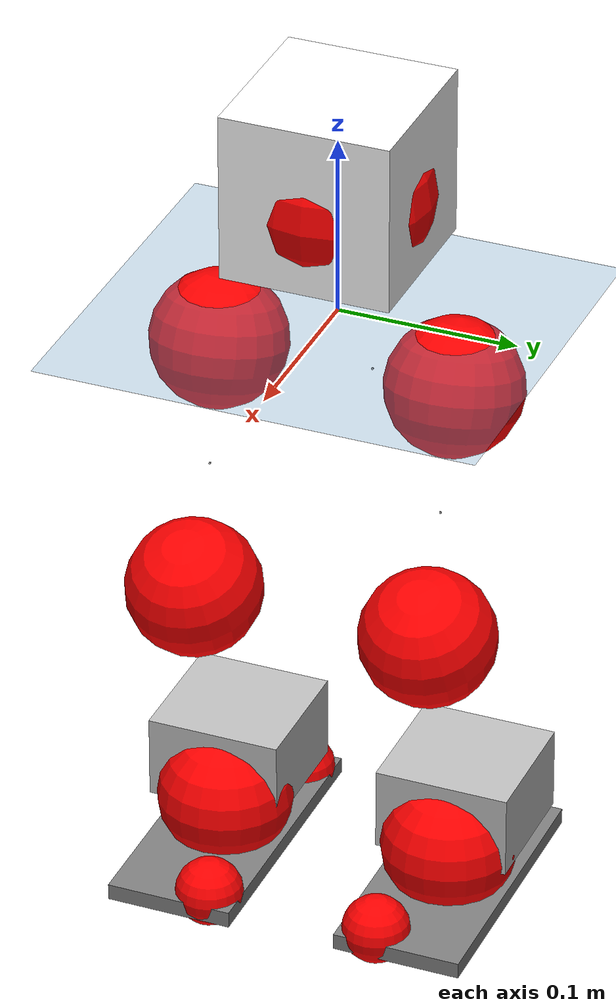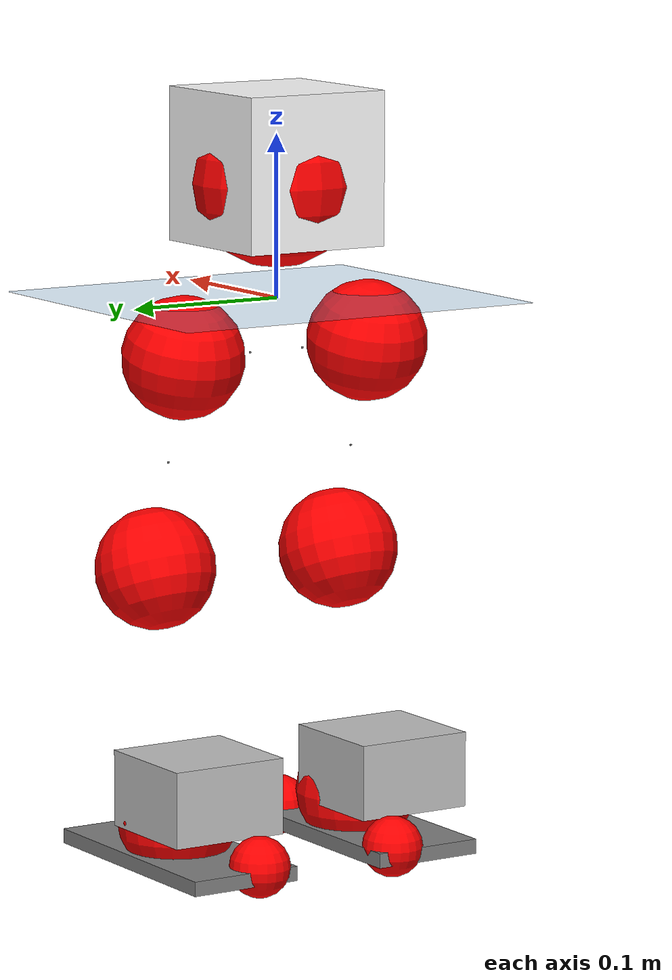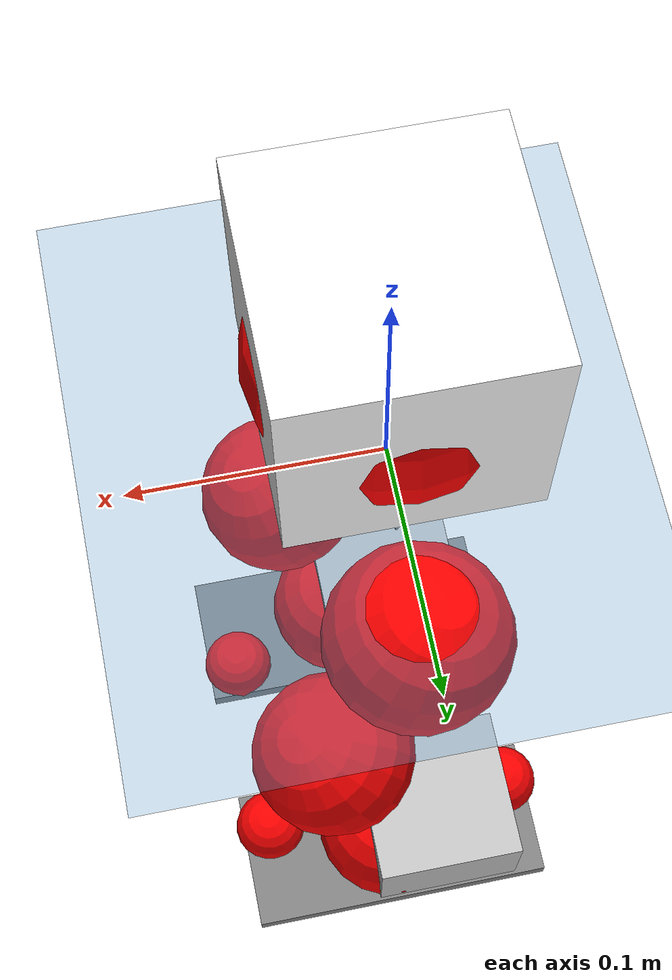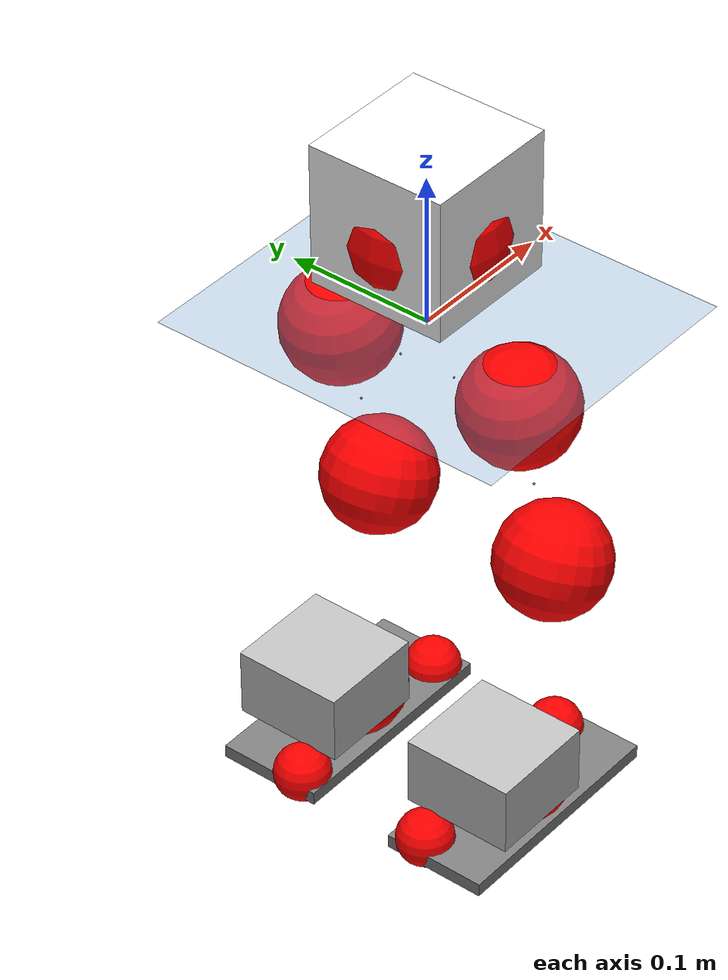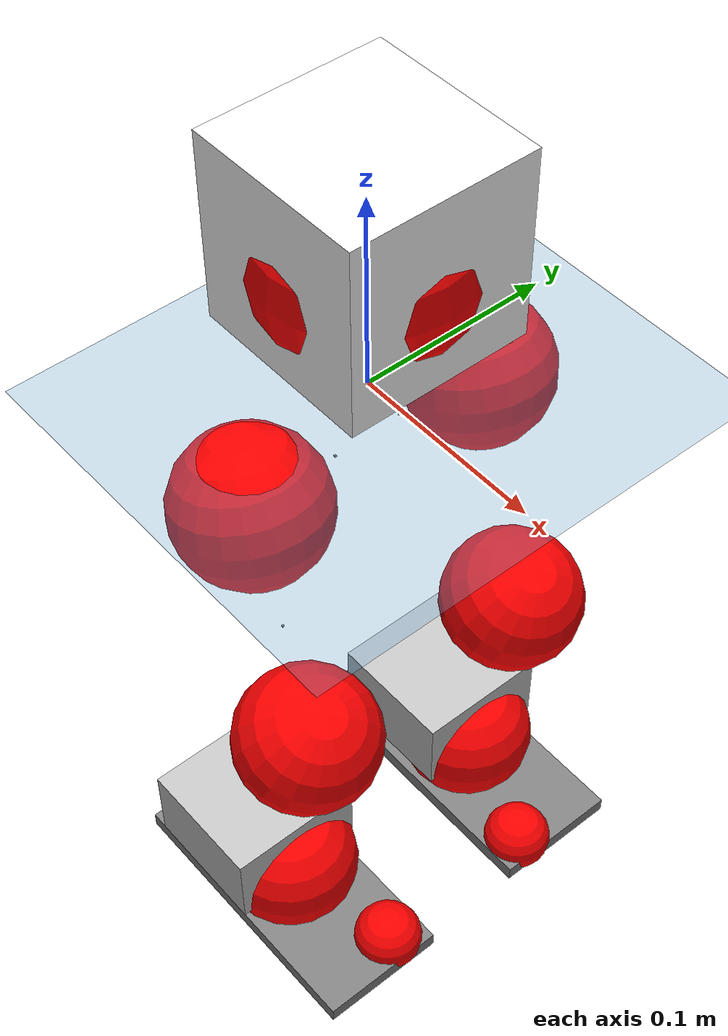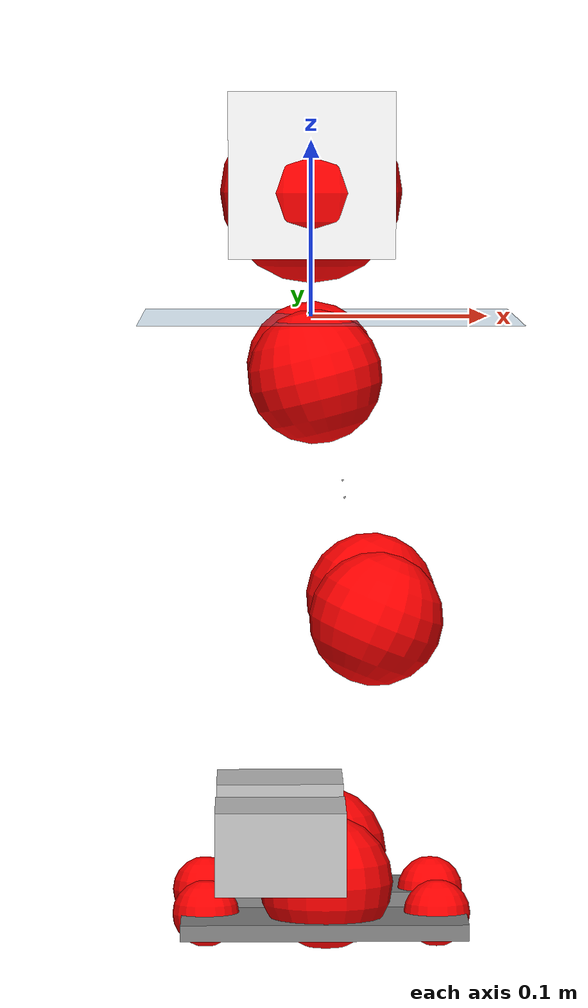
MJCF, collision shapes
<mujoco model="pi_12dof_release_v1">
  <compiler angle="radian" assetdir="assets" balanceinertia="true" inertiafromgeom="false"/>

  <option timestep="0.005" density="1.2" viscosity="2e-05"/>

  <size nkey="1"/>

  <visual>
    <quality shadowsize="8192"/>
    <map shadowclip="0.5"/>
  </visual>

  <default>
    <default class="/">
      <joint armature="0.01" damping="0.01" frictionloss="0.01"/>
      <geom contype="0" conaffinity="0" group="1" solref="-1000 -80"/>
      <site size="0.01 0.005 0.005" group="5"/>
      <general forcelimited="true" biastype="affine" gainprm="20" biasprm="0 -20 -0.5"/>
      <default class="foot">
        <geom size="0.0845 0.036 0.005" type="box" condim="6" group="4" priority="1" friction="0.9 0.2 0.2" solimp="0.015 1 0.005"/>
      </default>
      <default class="reward_collision_sphere">
        <geom group="5" rgba="1 0 0 1"/>
      </default>
    </default>
  </default>

  <asset>
    <texture type="skybox" colorspace="auto" name="//unnamed_texture_0" builtin="gradient" rgb1="0.95 0.95 0.95" rgb2="0.95 0.95 0.95" width="100" height="600"/>
    <texture type="2d" colorspace="auto" name="texplane" builtin="checker" rgb1="0.345 0.575 0.748" rgb2="0.345 0.575 0.748" markrgb="1 1 1" width="512" height="512"/>
    <material name="MatPlane" class="/" texture="texplane" texuniform="true" texrepeat="2 2" specular="0.9"/>
    <mesh name="baselink_1" class="/" file="baselink_1.STL"/>
    <mesh name="r_hip_pitch_link" class="/" file="r_hip_pitch_link.STL"/>
    <mesh name="r_hip_roll_link" class="/" file="r_hip_roll_link.STL"/>
    <mesh name="r_thigh_link" class="/" file="r_thigh_link.STL"/>
    <mesh name="r_calf_link" class="/" file="r_calf_link.STL"/>
    <mesh name="r_ankle_pitch_link" class="/" file="r_ankle_pitch_link.STL"/>
    <mesh name="r_ankle_roll_link" class="/" file="r_ankle_roll_link.STL"/>
    <mesh name="l_hip_pitch_link" class="/" file="l_hip_pitch_link.STL"/>
    <mesh name="l_hip_roll_link" class="/" file="l_hip_roll_link.STL"/>
    <mesh name="l_thigh_link" class="/" file="l_thigh_link.STL"/>
    <mesh name="l_calf_link" class="/" file="l_calf_link.STL"/>
    <mesh name="l_ankle_pitch_link" class="/" file="l_ankle_pitch_link.STL"/>
    <mesh name="l_ankle_roll_link" class="/" file="l_ankle_roll_link.STL"/>
  </asset>

  <worldbody>
    <geom name="floor" class="/" size="100 100 0.125" type="plane" group="0" material="MatPlane"/>
    <light name="toplight_shadow" class="/" pos="0 0 5" dir="0.0990148 0.0990148 -0.990148" type="directional" ambient="0.04 0.04 0.04" diffuse="0.55 0.55 0.55" specular="0.12 0.12 0.12"/>
    <light name="toplight_fill" class="/" pos="0 0 5" dir="0.0990148 0.0990148 -0.990148" type="directional" castshadow="false" ambient="0.04 0.04 0.04" diffuse="0.3 0.3 0.3" specular="0.08 0.08 0.08"/>
    <body name="trunk" pos="-5.39196e-05 8.22233e-05 0.000726314" quat="1 3.91828e-05 -7.04837e-05 8.90901e-06">
      <inertial pos="0.00260123 -0.00115254 0.0396049" quat="0.695844 0.00892963 0.00859208 0.718086" mass="1.78636" diaginertia="0.00826037 0.00416109 0.00419272"/>
      <joint name="//unnamed_joint_0" type="free"/>
      <geom name="//unnamed_geom_1" class="/" type="mesh" density="0" rgba="1 1 1 1" mesh="baselink_1"/>
      <geom name="//unnamed_geom_2" class="/" size="0.0470949 0.0470949 0.0470949" pos="0 0 0.0800879" type="box" rgba="1 1 1 1"/>
      <geom name="//unnamed_geom_3" class="reward_collision_sphere" size="0.0518044" pos="0 0 0.0700769"/>
      <site name="imu" class="/" pos="-0.00521108 -0.00188011 0.000939018" size="0.00941899"/>
      <camera name="track" class="/" pos="0 -1.71289 0" quat="0.707107 0.707107 0 0" mode="trackcom"/>
      <camera name="ego_camera" class="/" pos="0.0726114 0 0.180198" quat="-0.5 -0.5 0.5 0.5"/>
      <body name="r_hip_pitch_link" pos="0.00079934 -0.0195178 -0.0327893" quat="0.992186 -0.000250559 -0.124769 0.000254324">
        <inertial pos="0.00140074 -0.0470387 0.000288492" quat="-0.0184452 0.706287 -0.0328612 0.706922" mass="0.308682" diaginertia="9.19952e-05 4.52308e-05 8.36703e-05"/>
        <joint name="r_hip_pitch_joint" class="/" pos="0 0 0" axis="-0.000117502 -0.999999 -0.00115753" stiffness="0.000558382" range="-1.75034 1.23764" armature="0.00967501" damping="0.00270207" frictionloss="0.00954873"/>
        <geom name="//unnamed_geom_4" class="/" type="mesh" density="0" rgba="0.75294 0.75294 0.75294 1" mesh="r_hip_pitch_link"/>
        <geom name="//unnamed_geom_5" class="/" size="0.000470949 0.000470949 0.000470949" type="box" rgba="0.75294 0.75294 0.75294 1"/>
        <body name="r_hip_roll_link" pos="0.00100181 -0.0474878 0.000881504" quat="1 -5.79908e-07 0.000112917 -2.51986e-05">
          <inertial pos="-0.00205774 -7.15012e-05 -0.0614513" quat="0.705603 -0.0785459 -0.0826701 0.699371" mass="0.319924" diaginertia="0.00028185 0.000127801 0.000127908"/>
          <joint name="r_hip_roll_joint" class="/" pos="0 0 0" axis="-0.999987 0.00199469 -0.00467981" range="-0.126402 0.492362" armature="0.00974119" damping="0.00838666" frictionloss="0.00914447"/>
          <geom name="//unnamed_geom_6" class="/" type="mesh" density="0" rgba="0.75294 0.75294 0.75294 1" mesh="r_hip_roll_link"/>
          <geom name="//unnamed_geom_7" class="/" size="0.000470949 0.000470949 0.000470949" type="box" rgba="0.75294 0.75294 0.75294 1"/>
          <geom name="//unnamed_geom_8" class="reward_collision_sphere" size="0.037676"/>
          <body name="r_thigh_link" pos="-0.000752395 0.000942888 -0.0697539" quat="1 -4.88732e-08 -2.72404e-08 -4.17658e-08">
            <inertial pos="6.60403e-05 0.00106715 -0.0478925" quat="0.737058 0.675828 0.00104501 0.000765045" mass="0.0956223" diaginertia="0.000107618 4.36598e-05 5.85818e-05"/>
            <joint name="r_thigh_joint" class="/" pos="0 0 0" axis="-0.00224607 0.000353816 -0.999997" range="-0.308587 0.594507" armature="0.00958195" damping="0.00450629" frictionloss="0.00964438"/>
            <geom name="//unnamed_geom_9" class="/" type="mesh" density="0" rgba="0.75294 0.75294 0.75294 1" mesh="r_thigh_link"/>
            <geom name="//unnamed_geom_10" class="/" size="0.000470949 0.000470949 0.000470949" type="box" rgba="0.75294 0.75294 0.75294 1"/>
            <body name="r_calf_link" pos="0.000236507 -0.00222599 -0.0702363" quat="0.94768 -6.09739e-05 0.319221 -0.000251327">
              <inertial pos="-0.000295646 -0.000638107 -0.0701828" quat="0.999982 -0.00269634 4.39449e-05 0.0054201" mass="0.669759" diaginertia="0.00298849 0.00157599 0.000173789"/>
              <joint name="r_calf_joint" class="/" pos="0 0 0" axis="0.0012109 -0.999991 -0.0041843" range="-1.64795 0.628899" armature="0.00980706" damping="0.00384338" frictionloss="0.00982536"/>
              <geom name="//unnamed_geom_11" class="/" type="mesh" density="0" rgba="0.75294 0.75294 0.75294 1" mesh="r_calf_link"/>
              <geom name="//unnamed_geom_12" class="/" size="0.000470949 0.000470949 0.000470949" type="box" rgba="0.75294 0.75294 0.75294 1"/>
              <geom name="//unnamed_geom_13" class="reward_collision_sphere" size="0.037676"/>
              <body name="r_ankle_pitch_link" pos="0.000635269 0.00212136 -0.139542" quat="0.980068 -4.6819e-05 -0.198663 -1.10432e-05">
                <inertial pos="0.00465858 0.00352505 -0.00024594" quat="0.00224021 0.707174 -0.00194997 0.707033" mass="0.146697" diaginertia="0.000263154 0.000101669 0.000119943"/>
                <joint name="r_ankle_pitch_joint" class="/" pos="0 0 0" axis="-0.000301788 -0.999999 -0.00113122" range="-1.30422 0.511089" armature="0.00920369" damping="0.00284227" frictionloss="0.00943381"/>
                <geom name="//unnamed_geom_14" class="/" type="mesh" density="0" rgba="0.75294 0.75294 0.75294 1" mesh="r_ankle_pitch_link"/>
                <geom name="//unnamed_geom_15" class="/" size="0.0367341 0.037676 0.0235475" type="box" rgba="0.75294 0.75294 0.75294 1"/>
                <body name="r_ankle_roll_link" pos="0.073971 0.00269591 -0.000347824" quat="1 9.33632e-05 -8.86732e-05 0.000115442">
                  <inertial pos="-0.0231715 0.000203893 -0.014181" quat="0.560635 0.42654 0.434964 0.560855" mass="0.430517" diaginertia="0.000950326 0.000476403 0.000283408"/>
                  <joint name="r_ankle_roll_joint" class="/" pos="0 0 0" axis="-1 -0.00036817 -0.000264823" range="-0.135799 0.138383" armature="0.0091682" damping="0.00166798" frictionloss="0.00943734"/>
                  <geom name="//unnamed_geom_16" class="/" type="mesh" density="0" rgba="0.75294 0.75294 0.75294 1" mesh="r_ankle_roll_link"/>
                  <geom name="//unnamed_geom_17" class="/" type="mesh" rgba="0.75294 0.75294 0.75294 1" mesh="r_ankle_roll_link"/>
                  <geom name="right_foot" class="foot" size="0.0805499 0.0353901 0.00460971" pos="-0.0493757 0 -0.0440483"/>
                  <geom name="//unnamed_geom_19" class="reward_collision_sphere" size="0.037676" pos="-0.0484076 0 -0.020022"/>
                  <geom name="//unnamed_geom_20" class="reward_collision_sphere" size="0.018838" pos="0.0145223 0.0171289 -0.0400439"/>
                  <geom name="//unnamed_geom_21" class="reward_collision_sphere" size="0.018838" pos="-0.116178 0.0171289 -0.0400439"/>
                  <site name="right_foot" class="foot" pos="-0.0493757 0 -0.0440483" size="0.00941899"/>
                </body>
              </body>
            </body>
          </body>
        </body>
      </body>
      <body name="l_hip_pitch_link" pos="-0.000681518 0.0190491 -0.0325257" quat="0.992195 5.5193e-05 -0.124699 -5.0204e-05">
        <inertial pos="-3.44787e-05 0.0462638 -0.000413327" quat="-0.0350013 0.704057 0.0311253 0.708598" mass="0.323556" diaginertia="0.000109561 4.89653e-05 0.000101064"/>
        <joint name="l_hip_pitch_joint" class="/" pos="0 0 0" axis="0.00479976 0.999986 0.00208256" range="-1.25148 1.76336" armature="0.00975603" damping="0.00361086" frictionloss="0.00917986"/>
        <geom name="//unnamed_geom_22" class="/" type="mesh" density="0" rgba="0.75294 0.75294 0.75294 1" mesh="l_hip_pitch_link"/>
        <geom name="//unnamed_geom_23" class="/" size="0.000470949 0.000470949 0.000470949" type="box" rgba="0.75294 0.75294 0.75294 1"/>
        <body name="l_hip_roll_link" pos="0.00135091 0.0466329 -2.1065e-05" quat="1 -2.75315e-05 -4.22329e-05 -1.14436e-05">
          <inertial pos="-0.00152161 -0.000319528 -0.0618671" quat="0.69951 -0.0749996 -0.0773657 0.706452" mass="0.324627" diaginertia="0.000283455 0.000129462 0.000129311"/>
          <joint name="l_hip_roll_joint" class="/" pos="0 0 0" axis="-0.999982 -0.00115728 0.00581162" stiffness="0.000489841" range="-0.480961 0.0983204" armature="0.00960867" damping="0.00999213" frictionloss="0.00933004"/>
          <geom name="//unnamed_geom_24" class="/" type="mesh" density="0" rgba="0.75294 0.75294 0.75294 1" mesh="l_hip_roll_link"/>
          <geom name="//unnamed_geom_25" class="/" size="0.000470949 0.000470949 0.000470949" type="box" rgba="0.75294 0.75294 0.75294 1"/>
          <geom name="//unnamed_geom_26" class="reward_collision_sphere" size="0.037676"/>
          <body name="l_thigh_link" pos="0.0010707 -0.000220803 -0.0691376" quat="1 -0.000199771 -0.000128902 0.000175915">
            <inertial pos="0.000353043 -0.00173869 -0.0473872" quat="0.678139 0.734913 0.00554859 0.00026299" mass="0.0943646" diaginertia="0.000106092 4.38161e-05 5.75281e-05"/>
            <joint name="l_thigh_joint" class="/" pos="0 0 0" axis="0.00167338 0.00243401 -0.999996" range="-0.582686 0.279205" armature="0.00893714" damping="0.00127773" frictionloss="0.0090051"/>
            <geom name="//unnamed_geom_27" class="/" type="mesh" density="0" rgba="0.75294 0.75294 0.75294 1" mesh="l_thigh_link"/>
            <geom name="//unnamed_geom_28" class="/" size="0.000470949 0.000470949 0.000470949" type="box" rgba="0.75294 0.75294 0.75294 1"/>
            <body name="l_calf_link" pos="-0.00118018 -0.000144236 -0.0701379" quat="0.947638 0.000157366 0.319345 2.75566e-05">
              <inertial pos="-0.000273785 0.00257607 -0.070559" quat="0.999985 0.00367068 1.90641e-05 0.00405596" mass="0.687751" diaginertia="0.00303292 0.00163036 0.000175591"/>
              <joint name="l_calf_joint" class="/" pos="0 0 0" axis="0.000374009 1 6.77469e-05" stiffness="0.00403956" range="-0.656981 1.6258" armature="0.00939981" damping="0.00814968" frictionloss="0.00930541"/>
              <geom name="//unnamed_geom_29" class="/" type="mesh" density="0" rgba="0.75294 0.75294 0.75294 1" mesh="l_calf_link"/>
              <geom name="//unnamed_geom_30" class="/" size="0.000470949 0.000470949 0.000470949" type="box" rgba="0.75294 0.75294 0.75294 1"/>
              <geom name="//unnamed_geom_31" class="reward_collision_sphere" size="0.037676"/>
              <body name="l_ankle_pitch_link" pos="0.00130741 0.00180268 -0.139705" quat="0.980073 -0.00012275 -0.198635 0.000138569">
                <inertial pos="0.00413461 -0.0010954 0.000285957" quat="-0.00235123 0.707268 0.00208339 0.706939" mass="0.143153" diaginertia="0.000257648 0.000100305 0.000119267"/>
                <joint name="l_ankle_pitch_joint" class="/" pos="0 0 0" axis="-0.00228653 0.999997 -0.00102842" range="-0.507306 1.30619" armature="0.00947652" damping="0.00505467" frictionloss="0.0100731"/>
                <geom name="//unnamed_geom_32" class="/" type="mesh" density="0" rgba="0.75294 0.75294 0.75294 1" mesh="l_ankle_pitch_link"/>
                <geom name="//unnamed_geom_33" class="/" size="0.0367341 0.037676 0.0235475" type="box" rgba="0.75294 0.75294 0.75294 1"/>
                <body name="l_ankle_roll_link" pos="0.0728596 0.000300792 -9.46143e-06" quat="1 -0.000266329 0.000368829 0.000151719">
                  <inertial pos="-0.0229246 -0.000444246 -0.0147493" quat="0.559899 0.430923 0.434276 0.558769" mass="0.433707" diaginertia="0.000971775 0.00047324 0.000283234"/>
                  <joint name="l_ankle_roll_joint" class="/" pos="0 0 0" axis="-1 -0.000158534 0.000349816" range="-0.150987 0.150991" armature="0.00946301" damping="0.00868092" frictionloss="0.00903817"/>
                  <geom name="//unnamed_geom_34" class="/" type="mesh" density="0" rgba="0.75294 0.75294 0.75294 1" mesh="l_ankle_roll_link"/>
                  <geom name="//unnamed_geom_35" class="/" type="mesh" rgba="0.75294 0.75294 0.75294 1" mesh="l_ankle_roll_link"/>
                  <geom name="left_foot" class="foot" size="0.0787725 0.0359342 0.00453689" pos="-0.0493757 0 -0.0440483"/>
                  <geom name="//unnamed_geom_37" class="reward_collision_sphere" size="0.037676" pos="-0.0484076 0 -0.020022"/>
                  <geom name="//unnamed_geom_38" class="reward_collision_sphere" size="0.018838" pos="0.0145223 -0.0171289 -0.0400439"/>
                  <geom name="//unnamed_geom_39" class="reward_collision_sphere" size="0.018838" pos="-0.116178 -0.0171289 -0.0400439"/>
                  <site name="left_foot" class="foot" pos="-0.0493757 0 -0.0440483" size="0.00941899"/>
                </body>
              </body>
            </body>
          </body>
        </body>
      </body>
    </body>
  </worldbody>

  <contact>
    <pair class="/" geom1="floor" geom2="right_foot" name="//unnamed_contact_1"/>
    <pair class="/" geom1="floor" geom2="left_foot" name="//unnamed_contact_0"/>
  </contact>

  <actuator>
    <general name="r_hip_pitch_joint" class="/" joint="r_hip_pitch_joint" forcerange="-19.5517 19.5517" gainprm="18.7614" biasprm="0 -18.7614 -0.480452"/>
    <general name="r_hip_roll_joint" class="/" joint="r_hip_roll_joint" forcerange="-19.8879 19.8879" gainprm="18.7614" biasprm="0 -18.7614 -0.480452"/>
    <general name="r_thigh_joint" class="/" joint="r_thigh_joint" forcerange="-19.4528 19.4528" gainprm="18.7614" biasprm="0 -18.7614 -0.480452"/>
    <general name="r_calf_joint" class="/" joint="r_calf_joint" forcerange="-19.8041 19.8041" gainprm="18.7614" biasprm="0 -18.7614 -0.480452"/>
    <general name="r_ankle_pitch_joint" class="/" joint="r_ankle_pitch_joint" forcerange="-19.8775 19.8775" gainprm="18.7614" biasprm="0 -18.7614 -0.480452"/>
    <general name="r_ankle_roll_joint" class="/" joint="r_ankle_roll_joint" forcerange="-19.7659 19.7659" gainprm="18.7614" biasprm="0 -18.7614 -0.480452"/>
    <general name="l_hip_pitch_joint" class="/" joint="l_hip_pitch_joint" forcerange="-19.5061 19.5061" gainprm="18.7614" biasprm="0 -18.7614 -0.480452"/>
    <general name="l_hip_roll_joint" class="/" joint="l_hip_roll_joint" forcerange="-20.475 20.475" gainprm="18.7614" biasprm="0 -18.7614 -0.480452"/>
    <general name="l_thigh_joint" class="/" joint="l_thigh_joint" forcerange="-19.541 19.541" gainprm="18.7614" biasprm="0 -18.7614 -0.480452"/>
    <general name="l_calf_joint" class="/" joint="l_calf_joint" forcerange="-20.4356 20.4356" gainprm="18.7614" biasprm="0 -18.7614 -0.480452"/>
    <general name="l_ankle_pitch_joint" class="/" joint="l_ankle_pitch_joint" forcerange="-19.2032 19.2032" gainprm="18.7614" biasprm="0 -18.7614 -0.480452"/>
    <general name="l_ankle_roll_joint" class="/" joint="l_ankle_roll_joint" forcerange="-19.6686 19.6686" gainprm="18.7614" biasprm="0 -18.7614 -0.480452"/>
  </actuator>

  <sensor>
    <gyro site="imu" name="imu_angular_velocity"/>
    <velocimeter site="imu" name="imu_linear_velocity"/>
    <framelinvel objtype="site" objname="left_foot" name="left_foot_global_linear_velocity"/>
    <framelinvel objtype="site" objname="right_foot" name="right_foot_global_linear_velocity"/>
  </sensor>

  <keyframe>
    <key name="home" qpos="0 0 0.291 1 0 0 0 0.4 0 0 -0.8 0.4 0 -0.4 0 0 0.8 -0.4 0"/>
  </keyframe>
</mujoco>
